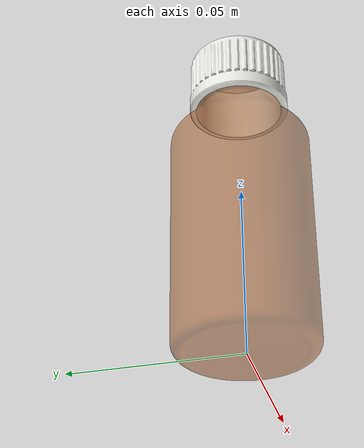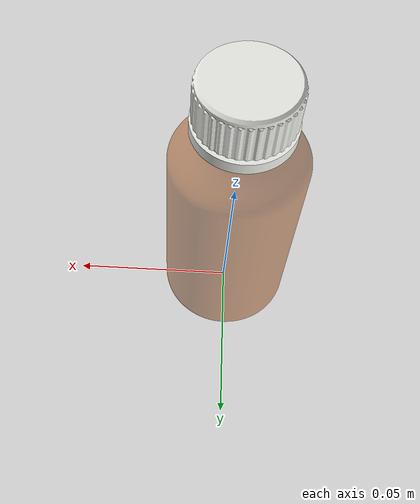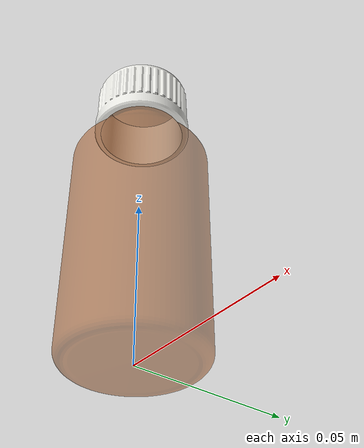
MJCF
<mujoco model="amber_060ml">
  <asset>
    <mesh name="amber_060ml_00" file="amber_060ml_00.obj" inertia="exact"/>
    <mesh name="amber_060ml_01" file="amber_060ml_01.obj" inertia="exact"/>
  </asset>
  <worldbody>
    <body name="amber_060ml">
      <geom type="mesh" mesh="amber_060ml_00" rgba="0.930 0.930 0.910 1.000" density="2500"/>  <!-- White_PP -->
      <geom type="mesh" mesh="amber_060ml_01" rgba="0.620 0.280 0.050 0.500" density="2500"/>  <!-- Amber_Glass -->
    </body>
  </worldbody>
</mujoco>
